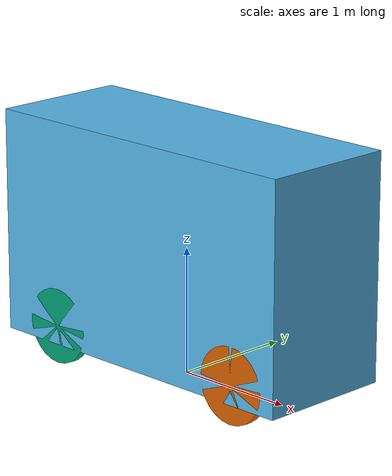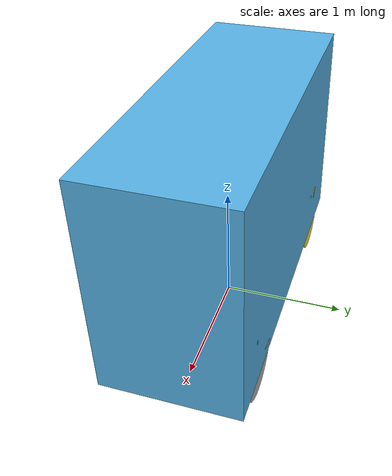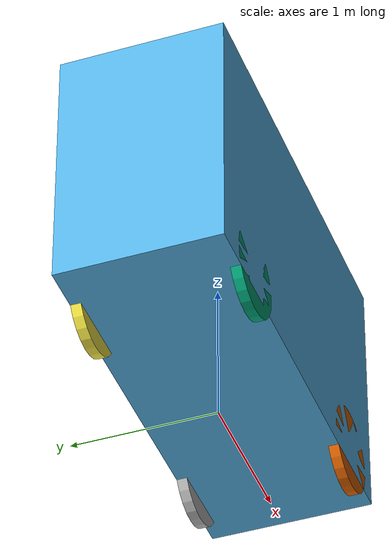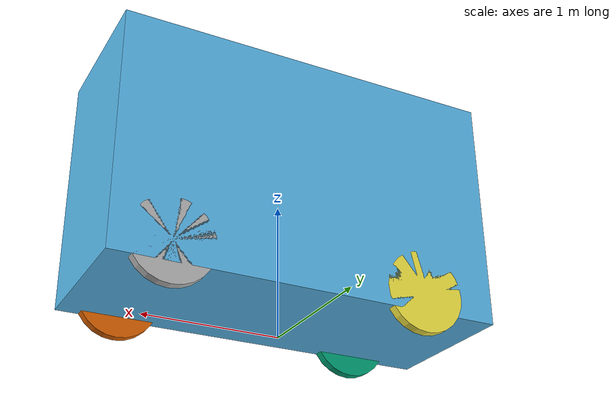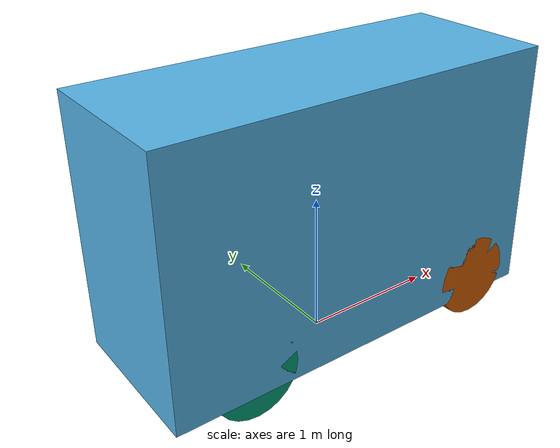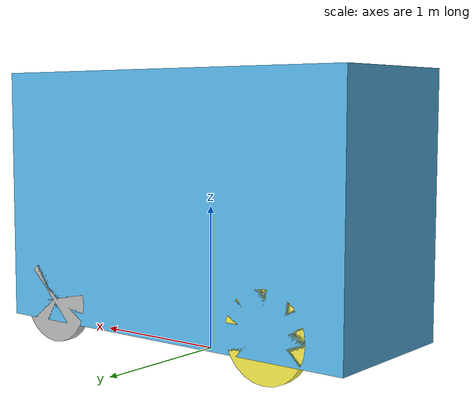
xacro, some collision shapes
<?xml version="1.0"?>
<robot name="robotaksi" xmlns:xacro="http://www.ros.org/wiki/xacro">

    <xacro:include filename="common_properties.xacro" />

    <xacro:property name="base_length" value="2.85" />
    <xacro:property name="base_width" value="1.11" />
    <xacro:property name="base_height" value="1.78" />
    <xacro:property name="base_radius" value="0.3" />
    <xacro:property name="wheel_length" value="0.07" />
    <xacro:property name="wheel_z_offset" value="0.15" />
    <xacro:property name="rear_wheel_x_offset" value="0.865" />
    <xacro:property name="front_wheel_x_offset" value="1.0" />

    <link name="base_footprint" />

    <link name="base_link">
        <visual>
            <geometry>
                <mesh filename="package://robotaksi_classic/meshes/robotaksi.dae" />
            </geometry>
            <origin xyz="0 0 ${base_height / 2.0}" rpy="0 0 0" />
        </visual>
        <xacro:box_inertia m="500.0" l="${base_length*2}" w="${base_width*2}" h="${base_height*2}"
            xyz="0 0 ${base_height / 2.0}" rpy="0 0 0" />
        <collision>
            <geometry>
                <box size="${base_length} ${base_width} ${base_height}" />
            </geometry>
            <origin xyz="0 0 ${base_height / 2.0}" rpy="0 0 0" />
        </collision>
    </link>

    <link name="rear_right_axle">
        <visual>
            <geometry>
                <cylinder radius="${base_radius}" length="${wheel_length}" />
            </geometry>
            <origin xyz="0 0 0" rpy="${pi / 2.0} 0 0" />
        </visual>
        <xacro:cylinder_inertia m="30" r="${base_radius*2}" l="${wheel_length}"
            xyz="0 0 0" rpy="${pi / 2.0} 0 0" />

        <collision>
            <geometry>
                <cylinder radius="${base_radius}" length="${wheel_length}" />
            </geometry>
            <origin xyz="0 0 0" rpy="${pi / 2.0} 0 0" />
        </collision>
    </link>

    <link name="rear_left_axle">
        <visual>
            <geometry>
                <cylinder radius="${base_radius}" length="${wheel_length}" />
            </geometry>
            <origin xyz="0 0 0" rpy="${pi / 2.0} 0 0" />
        </visual>
        <xacro:cylinder_inertia m="30" r="${base_radius*2}" l="${wheel_length}"
            xyz="0 0 0" rpy="${pi / 2.0} 0 0" />

        <collision>
            <geometry>
                <cylinder radius="${base_radius}" length="${wheel_length}" />
            </geometry>
            <origin xyz="0 0 0" rpy="${pi / 2.0} 0 0" />
        </collision>
    </link>

    <link name="front_right_steer">
        <inertial>
            <origin rpy="0 0 0" xyz="0.003381 1.5929e-07 0.02162" />
            <mass value="1" />
            <inertia ixx="1.0" ixy="0.0" ixz="0.0" iyy="1.0" iyz="0.0" izz="1.0" />
        </inertial>
    </link>

    <link name="front_right_axle">
        <visual>
            <geometry>
                <cylinder radius="${base_radius}" length="${wheel_length}" />
            </geometry>
            <origin xyz="0 0 0" rpy="${pi / 2.0} 0 0" />
        </visual>
        <xacro:cylinder_inertia m="30" r="${base_radius*2}" l="${wheel_length}"
            xyz="0 0 0" rpy="${pi / 2.0} 0 0" />

        <collision>
            <geometry>
                <cylinder radius="${base_radius}" length="${wheel_length}" />
            </geometry>
            <origin xyz="0 0 0" rpy="${pi / 2.0} 0 0" />
        </collision>
    </link>

    <link name="front_left_steer">
        <inertial>
            <origin rpy="0 0 0" xyz="0.003381 1.5929e-07 0.02162" />
            <mass value="1" />
            <inertia ixx="1.0" ixy="0.0" ixz="0.0" iyy="1.0" iyz="0.0" izz="1.0" />
        </inertial>
    </link>

    <link name="front_left_axle">
        <visual>
            <geometry>
                <cylinder radius="${base_radius}" length="${wheel_length}" />
            </geometry>
            <origin xyz="0 0 0" rpy="${pi / 2.0} 0 0" />
        </visual>

        <xacro:cylinder_inertia m="30" r="${base_radius*2}" l="${wheel_length}"
            xyz="0 0 0" rpy="${pi / 2.0} 0 0" />

        <collision>
            <geometry>
                <cylinder radius="${base_radius}" length="${wheel_length}" />
            </geometry>
            <origin xyz="0 0 0" rpy="${pi / 2.0} 0 0" />
        </collision>
    </link>

    <joint name="base_joint" type="fixed">
        <parent link="base_footprint" />
        <child link="base_link" />
        <origin xyz="0 0 ${base_radius-wheel_z_offset}" rpy="0 0 0" />
    </joint>

    <joint name="rear_right_axle_joint" type="continuous">
        <parent link="base_link" />
        <child link="rear_right_axle" />
        <origin
            xyz="${-rear_wheel_x_offset} ${-(base_width / 2.0) + (wheel_length / 2.0)} ${wheel_z_offset}"
            rpy="0 0 0" />
        <axis xyz="0 1 0" />
    </joint>

    <joint name="rear_left_axle_joint" type="continuous">
        <parent link="base_link" />
        <child link="rear_left_axle" />
        <origin
            xyz="${-rear_wheel_x_offset} ${(base_width / 2.0) - (wheel_length / 2.0)} ${wheel_z_offset}"
            rpy="0 0 0" />
        <axis xyz="0 1 0" />
    </joint>

    <joint name="front_right_steer_joint" type="continuous">
        <parent link="base_link" />
        <child link="front_right_steer" />
        <origin
            xyz="${front_wheel_x_offset} ${-(base_width / 2.0) + (wheel_length / 2.0)} ${wheel_z_offset}"
            rpy="0 0 0" />
        <axis xyz="0 0 1" />
    </joint>

    <joint name="front_right_axle_joint" type="continuous">
        <parent link="front_right_steer" />
        <child link="front_right_axle" />
        <origin xyz="0 0 0" rpy="0 0 0" />
        <axis xyz="0 1 0" />
    </joint>

    <joint name="front_left_steer_joint" type="continuous">
        <parent link="base_link" />
        <child link="front_left_steer" />
        <origin
            xyz="${front_wheel_x_offset} ${(base_width / 2.0) - (wheel_length / 2.0)} ${wheel_z_offset}"
            rpy="0 0 0" />
        <axis xyz="0 0 1" />
    </joint>

    <joint name="front_left_axle_joint" type="continuous">
        <parent link="front_left_steer" />
        <child link="front_left_axle" />
        <origin xyz="0 0 0" rpy="0 0 0" />
        <axis xyz="0 1 0" />
    </joint>

</robot>

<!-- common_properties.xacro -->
<robot xmlns:xacro="http://www.ros.org/wiki/xacro">
  <xacro:macro name="box_inertia" params="m l w h xyz rpy">
    <inertial>
      <origin xyz="${xyz}" rpy="${rpy}"/>
      <mass value="${m}"/>

      <inertia ixx="${(m/12) * (h*h + l*l)}" ixy="0" ixz="0" iyy="${(m/12) * (w*w + l*l)}" iyz="0" izz="${(m/12) * (w*w + h*h)}"/>
    </inertial>
  </xacro:macro>

  <xacro:macro name="sphere_inertia" params="m r xyz rpy">
    <inertial>
      <origin xyz="${xyz}" rpy="${rpy}"/>
      <mass value="${m}"/>

      <inertia ixx="${(2*m/5) * (r*r)}" ixy="0" ixz="0" iyy="${(2*m/5) * (r*r)}" iyz="0" izz="${(2*m/5) * (r*r)}"/>
    </inertial>
  </xacro:macro>

  <xacro:macro name="cylinder_inertia" params="m r l xyz rpy">
    <inertial>
      <origin xyz="${xyz}" rpy="${rpy}"/>
      <mass value="${m}"/>

      <inertia ixx="${(m/12) * ((3*r*r) + (l*l))}" ixy="0" ixz="0" iyy="${(m/12) * ((3*r*r) + (l*l))}" iyz="0" izz="${(m/2) * (r*r)}"/>
    </inertial>
  </xacro:macro>

  <material name="Gray">
    <color rgba="0.5 0.5 0.5 1.0"/>
  </material>
  <material name="Black">
    <color rgba="0.0 0.0 0.0 1.0"/>
  </material>
  <material name="Red">
    <color rgba="1.0 0.0 0.0 1.0"/>
  </material>
  <material name="Blue">
    <color rgba="0.0 0.0 1.0 1.0"/>
  </material>
  <material name="Green">
    <color rgba="0.0 1.0 0.0 1.0"/>
  </material>
  <material name="White">
    <color rgba="1.0 1.0 1.0 1.0"/>
  </material>
</robot>
